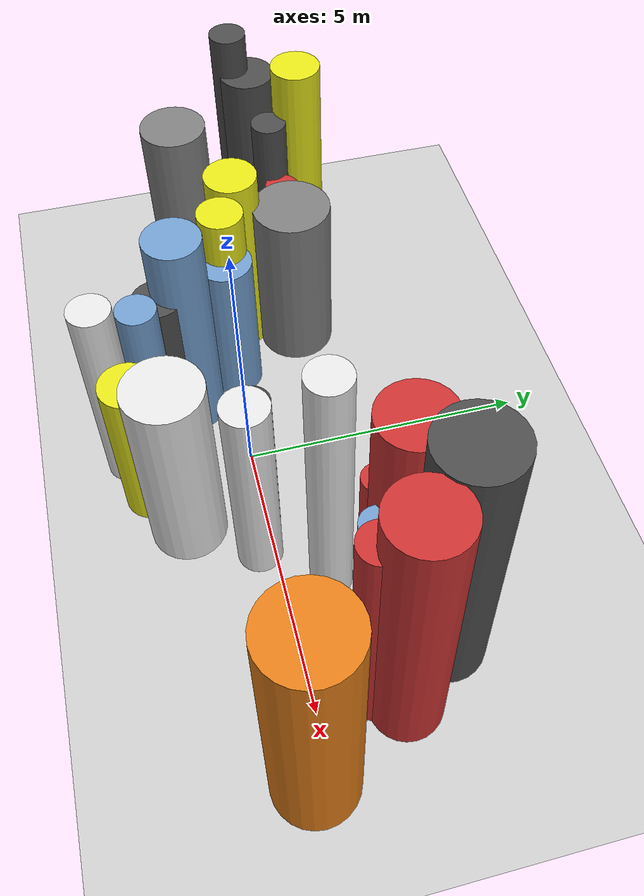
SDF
<?xml version='1.0'?>
<sdf version='1.6'>
  <world name='routeA_rl_v1__dense_recovery__rl_train__s_turn_multi_obstacle__000093'>
    <!-- Sun light -->
    <light name='sun' type='directional'>
      <cast_shadows>1</cast_shadows>
      <pose>0 0 10 0 0 0</pose>
      <diffuse>0.8 0.8 0.8 1</diffuse>
      <specular>0.2 0.2 0.2 1</specular>
      <attenuation>
        <range>1000</range>
        <constant>0.9</constant>
        <linear>0.01</linear>
        <quadratic>0.001</quadratic>
      </attenuation>
      <direction>-0.5 0.1 -0.9</direction>
    </light>

    <!-- Ground plane -->
    <model name='ground_plane'>
      <static>1</static>
      <link name='link'>
        <collision name='collision'>
          <geometry>
            <plane>
              <normal>0 0 1</normal>
              <size>100 100</size>
            </plane>
          </geometry>
          <surface>
            <contact>
              <collide_bitmask>65535</collide_bitmask>
              <ode/>
            </contact>
            <friction>
              <ode>
                <mu>100</mu>
                <mu2>50</mu2>
              </ode>
              <torsional><ode/></torsional>
            </friction>
            <bounce/>
          </surface>
          <max_contacts>10</max_contacts>
        </collision>
        <visual name='visual'>
          <cast_shadows>0</cast_shadows>
          <geometry>
            <plane>
              <normal>0 0 1</normal>
              <size>100 100</size>
            </plane>
          </geometry>
          <material>
            <script>
              <uri>file://media/materials/scripts/gazebo.material</uri>
              <n>Gazebo/Grey</n>
            </script>
          </material>
        </visual>
      </link>
    </model>

    <!-- Environment -->
    <magnetic_field>6e-06 2.3e-05 -4.2e-05</magnetic_field>
    <atmosphere type='adiabatic'/>
    <physics name='default_physics' default='0' type='ode'>
      <gravity>0 0 -9.8</gravity>
      <max_step_size>0.004</max_step_size>
      <real_time_factor>1</real_time_factor>
      <real_time_update_rate>250</real_time_update_rate>
    </physics>
    <scene>
      <ambient>0.4 0.4 0.4 1</ambient>
      <background>0.7 0.7 0.7 1</background>
      <shadows>1</shadows>
    </scene>
    <wind/>
    <spherical_coordinates>
      <surface_model>EARTH_WGS84</surface_model>
      <latitude_deg>0</latitude_deg>
      <longitude_deg>0</longitude_deg>
      <elevation>0</elevation>
      <heading_deg>0</heading_deg>
    </spherical_coordinates>

    <!-- ============ OBSTACLES (28) ============ -->
    <model name='s_turn_obs_0'>
      <static>1</static>
      <link name='link'>
        <visual name='visual'>
          <geometry>
            <cylinder>
              <radius>0.6418</radius>
              <length>3.0155</length>
            </cylinder>
          </geometry>
          <material>
            <script>
              <n>Gazebo/Grey</n>
              <uri>file://media/materials/scripts/gazebo.material</uri>
            </script>
            <ambient>0.5 0.5 0.5 1</ambient>
          </material>
        </visual>
        <collision name='collision'>
          <geometry>
            <cylinder>
              <radius>0.6418</radius>
              <length>3.0155</length>
            </cylinder>
          </geometry>
          <max_contacts>10</max_contacts>
          <surface>
            <contact><ode/></contact>
            <bounce/>
            <friction>
              <ode><mu>1</mu><mu2>1</mu2></ode>
              <torsional><ode/></torsional>
            </friction>
          </surface>
        </collision>
      </link>
      <pose>-6.0000 -0.1599 1.5077 0 0 0.0000</pose>
    </model>

    <model name='s_turn_obs_1'>
      <static>1</static>
      <link name='link'>
        <visual name='visual'>
          <geometry>
            <cylinder>
              <radius>0.3200</radius>
              <length>5.3557</length>
            </cylinder>
          </geometry>
          <material>
            <script>
              <n>Gazebo/DarkGrey</n>
              <uri>file://media/materials/scripts/gazebo.material</uri>
            </script>
            <ambient>0.3 0.3 0.3 1</ambient>
          </material>
        </visual>
        <collision name='collision'>
          <geometry>
            <cylinder>
              <radius>0.3200</radius>
              <length>5.3557</length>
            </cylinder>
          </geometry>
          <max_contacts>10</max_contacts>
          <surface>
            <contact><ode/></contact>
            <bounce/>
            <friction>
              <ode><mu>1</mu><mu2>1</mu2></ode>
              <torsional><ode/></torsional>
            </friction>
          </surface>
        </collision>
      </link>
      <pose>-5.2000 0.9741 2.6778 0 0 0.0000</pose>
    </model>

    <model name='s_turn_obs_2'>
      <static>1</static>
      <link name='link'>
        <visual name='visual'>
          <geometry>
            <cylinder>
              <radius>0.4378</radius>
              <length>5.0576</length>
            </cylinder>
          </geometry>
          <material>
            <script>
              <n>Gazebo/Yellow</n>
              <uri>file://media/materials/scripts/gazebo.material</uri>
            </script>
            <ambient>0.9 0.9 0.1 1</ambient>
          </material>
        </visual>
        <collision name='collision'>
          <geometry>
            <cylinder>
              <radius>0.4378</radius>
              <length>5.0576</length>
            </cylinder>
          </geometry>
          <max_contacts>10</max_contacts>
          <surface>
            <contact><ode/></contact>
            <bounce/>
            <friction>
              <ode><mu>1</mu><mu2>1</mu2></ode>
              <torsional><ode/></torsional>
            </friction>
          </surface>
        </collision>
      </link>
      <pose>-4.4000 2.0059 2.5288 0 0 0.0000</pose>
    </model>

    <model name='s_turn_obs_3'>
      <static>1</static>
      <link name='link'>
        <visual name='visual'>
          <geometry>
            <cylinder>
              <radius>0.3048</radius>
              <length>3.1299</length>
            </cylinder>
          </geometry>
          <material>
            <script>
              <n>Gazebo/Red</n>
              <uri>file://media/materials/scripts/gazebo.material</uri>
            </script>
            <ambient>0.8 0.2 0.2 1</ambient>
          </material>
        </visual>
        <collision name='collision'>
          <geometry>
            <cylinder>
              <radius>0.3048</radius>
              <length>3.1299</length>
            </cylinder>
          </geometry>
          <max_contacts>10</max_contacts>
          <surface>
            <contact><ode/></contact>
            <bounce/>
            <friction>
              <ode><mu>1</mu><mu2>1</mu2></ode>
              <torsional><ode/></torsional>
            </friction>
          </surface>
        </collision>
      </link>
      <pose>-3.6000 1.5160 1.5650 0 0 0.0000</pose>
    </model>

    <model name='s_turn_obs_4'>
      <static>1</static>
      <link name='link'>
        <visual name='visual'>
          <geometry>
            <cylinder>
              <radius>0.6995</radius>
              <length>3.3065</length>
            </cylinder>
          </geometry>
          <material>
            <script>
              <n>Gazebo/Grey</n>
              <uri>file://media/materials/scripts/gazebo.material</uri>
            </script>
            <ambient>0.5 0.5 0.5 1</ambient>
          </material>
        </visual>
        <collision name='collision'>
          <geometry>
            <cylinder>
              <radius>0.6995</radius>
              <length>3.3065</length>
            </cylinder>
          </geometry>
          <max_contacts>10</max_contacts>
          <surface>
            <contact><ode/></contact>
            <bounce/>
            <friction>
              <ode><mu>1</mu><mu2>1</mu2></ode>
              <torsional><ode/></torsional>
            </friction>
          </surface>
        </collision>
      </link>
      <pose>-2.8000 1.5094 1.6533 0 0 0.0000</pose>
    </model>

    <model name='s_turn_obs_5'>
      <static>1</static>
      <link name='link'>
        <visual name='visual'>
          <geometry>
            <cylinder>
              <radius>0.4910</radius>
              <length>3.0280</length>
            </cylinder>
          </geometry>
          <material>
            <script>
              <n>Gazebo/Blue</n>
              <uri>file://media/materials/scripts/gazebo.material</uri>
            </script>
            <ambient>0.447 0.624 0.812 1</ambient>
          </material>
        </visual>
        <collision name='collision'>
          <geometry>
            <cylinder>
              <radius>0.4910</radius>
              <length>3.0280</length>
            </cylinder>
          </geometry>
          <max_contacts>10</max_contacts>
          <surface>
            <contact><ode/></contact>
            <bounce/>
            <friction>
              <ode><mu>1</mu><mu2>1</mu2></ode>
              <torsional><ode/></torsional>
            </friction>
          </surface>
        </collision>
      </link>
      <pose>-2.0000 0.1230 1.5140 0 0 0.0000</pose>
    </model>

    <model name='s_turn_obs_6'>
      <static>1</static>
      <link name='link'>
        <visual name='visual'>
          <geometry>
            <cylinder>
              <radius>0.4300</radius>
              <length>3.2369</length>
            </cylinder>
          </geometry>
          <material>
            <script>
              <n>Gazebo/DarkGrey</n>
              <uri>file://media/materials/scripts/gazebo.material</uri>
            </script>
            <ambient>0.3 0.3 0.3 1</ambient>
          </material>
        </visual>
        <collision name='collision'>
          <geometry>
            <cylinder>
              <radius>0.4300</radius>
              <length>3.2369</length>
            </cylinder>
          </geometry>
          <max_contacts>10</max_contacts>
          <surface>
            <contact><ode/></contact>
            <bounce/>
            <friction>
              <ode><mu>1</mu><mu2>1</mu2></ode>
              <torsional><ode/></torsional>
            </friction>
          </surface>
        </collision>
      </link>
      <pose>-1.2000 -1.1308 1.6184 0 0 0.0000</pose>
    </model>

    <model name='s_turn_obs_7'>
      <static>1</static>
      <link name='link'>
        <visual name='visual'>
          <geometry>
            <cylinder>
              <radius>0.3569</radius>
              <length>4.0674</length>
            </cylinder>
          </geometry>
          <material>
            <script>
              <n>Gazebo/White</n>
              <uri>file://media/materials/scripts/gazebo.material</uri>
            </script>
            <ambient>0.9 0.9 0.9 1</ambient>
          </material>
        </visual>
        <collision name='collision'>
          <geometry>
            <cylinder>
              <radius>0.3569</radius>
              <length>4.0674</length>
            </cylinder>
          </geometry>
          <max_contacts>10</max_contacts>
          <surface>
            <contact><ode/></contact>
            <bounce/>
            <friction>
              <ode><mu>1</mu><mu2>1</mu2></ode>
              <torsional><ode/></torsional>
            </friction>
          </surface>
        </collision>
      </link>
      <pose>-0.4000 -2.1851 2.0337 0 0 0.0000</pose>
    </model>

    <model name='s_turn_obs_8'>
      <static>1</static>
      <link name='link'>
        <visual name='visual'>
          <geometry>
            <cylinder>
              <radius>0.4644</radius>
              <length>3.1144</length>
            </cylinder>
          </geometry>
          <material>
            <script>
              <n>Gazebo/Yellow</n>
              <uri>file://media/materials/scripts/gazebo.material</uri>
            </script>
            <ambient>0.9 0.9 0.1 1</ambient>
          </material>
        </visual>
        <collision name='collision'>
          <geometry>
            <cylinder>
              <radius>0.4644</radius>
              <length>3.1144</length>
            </cylinder>
          </geometry>
          <max_contacts>10</max_contacts>
          <surface>
            <contact><ode/></contact>
            <bounce/>
            <friction>
              <ode><mu>1</mu><mu2>1</mu2></ode>
              <torsional><ode/></torsional>
            </friction>
          </surface>
        </collision>
      </link>
      <pose>0.4000 -1.8598 1.5572 0 0 0.0000</pose>
    </model>

    <model name='s_turn_obs_9'>
      <static>1</static>
      <link name='link'>
        <visual name='visual'>
          <geometry>
            <cylinder>
              <radius>0.6528</radius>
              <length>3.8027</length>
            </cylinder>
          </geometry>
          <material>
            <script>
              <n>Gazebo/White</n>
              <uri>file://media/materials/scripts/gazebo.material</uri>
            </script>
            <ambient>0.9 0.9 0.9 1</ambient>
          </material>
        </visual>
        <collision name='collision'>
          <geometry>
            <cylinder>
              <radius>0.6528</radius>
              <length>3.8027</length>
            </cylinder>
          </geometry>
          <max_contacts>10</max_contacts>
          <surface>
            <contact><ode/></contact>
            <bounce/>
            <friction>
              <ode><mu>1</mu><mu2>1</mu2></ode>
              <torsional><ode/></torsional>
            </friction>
          </surface>
        </collision>
      </link>
      <pose>1.2000 -1.3313 1.9013 0 0 0.0000</pose>
    </model>

    <model name='s_turn_obs_10'>
      <static>1</static>
      <link name='link'>
        <visual name='visual'>
          <geometry>
            <cylinder>
              <radius>0.3864</radius>
              <length>4.0405</length>
            </cylinder>
          </geometry>
          <material>
            <script>
              <n>Gazebo/White</n>
              <uri>file://media/materials/scripts/gazebo.material</uri>
            </script>
            <ambient>0.9 0.9 0.9 1</ambient>
          </material>
        </visual>
        <collision name='collision'>
          <geometry>
            <cylinder>
              <radius>0.3864</radius>
              <length>4.0405</length>
            </cylinder>
          </geometry>
          <max_contacts>10</max_contacts>
          <surface>
            <contact><ode/></contact>
            <bounce/>
            <friction>
              <ode><mu>1</mu><mu2>1</mu2></ode>
              <torsional><ode/></torsional>
            </friction>
          </surface>
        </collision>
      </link>
      <pose>2.0000 -0.2448 2.0202 0 0 0.0000</pose>
    </model>

    <model name='s_turn_obs_11'>
      <static>1</static>
      <link name='link'>
        <visual name='visual'>
          <geometry>
            <cylinder>
              <radius>0.3548</radius>
              <length>5.3485</length>
            </cylinder>
          </geometry>
          <material>
            <script>
              <n>Gazebo/White</n>
              <uri>file://media/materials/scripts/gazebo.material</uri>
            </script>
            <ambient>0.9 0.9 0.9 1</ambient>
          </material>
        </visual>
        <collision name='collision'>
          <geometry>
            <cylinder>
              <radius>0.3548</radius>
              <length>5.3485</length>
            </cylinder>
          </geometry>
          <max_contacts>10</max_contacts>
          <surface>
            <contact><ode/></contact>
            <bounce/>
            <friction>
              <ode><mu>1</mu><mu2>1</mu2></ode>
              <torsional><ode/></torsional>
            </friction>
          </surface>
        </collision>
      </link>
      <pose>2.8000 0.7950 2.6743 0 0 0.0000</pose>
    </model>

    <model name='s_turn_obs_12'>
      <static>1</static>
      <link name='link'>
        <visual name='visual'>
          <geometry>
            <cylinder>
              <radius>0.5907</radius>
              <length>5.2237</length>
            </cylinder>
          </geometry>
          <material>
            <script>
              <n>Gazebo/Red</n>
              <uri>file://media/materials/scripts/gazebo.material</uri>
            </script>
            <ambient>0.8 0.2 0.2 1</ambient>
          </material>
        </visual>
        <collision name='collision'>
          <geometry>
            <cylinder>
              <radius>0.5907</radius>
              <length>5.2237</length>
            </cylinder>
          </geometry>
          <max_contacts>10</max_contacts>
          <surface>
            <contact><ode/></contact>
            <bounce/>
            <friction>
              <ode><mu>1</mu><mu2>1</mu2></ode>
              <torsional><ode/></torsional>
            </friction>
          </surface>
        </collision>
      </link>
      <pose>3.6000 1.7473 2.6118 0 0 0.0000</pose>
    </model>

    <model name='s_turn_obs_13'>
      <static>1</static>
      <link name='link'>
        <visual name='visual'>
          <geometry>
            <cylinder>
              <radius>0.6541</radius>
              <length>5.5284</length>
            </cylinder>
          </geometry>
          <material>
            <script>
              <n>Gazebo/DarkGrey</n>
              <uri>file://media/materials/scripts/gazebo.material</uri>
            </script>
            <ambient>0.3 0.3 0.3 1</ambient>
          </material>
        </visual>
        <collision name='collision'>
          <geometry>
            <cylinder>
              <radius>0.6541</radius>
              <length>5.5284</length>
            </cylinder>
          </geometry>
          <max_contacts>10</max_contacts>
          <surface>
            <contact><ode/></contact>
            <bounce/>
            <friction>
              <ode><mu>1</mu><mu2>1</mu2></ode>
              <torsional><ode/></torsional>
            </friction>
          </surface>
        </collision>
      </link>
      <pose>4.4000 2.2730 2.7642 0 0 0.0000</pose>
    </model>

    <model name='s_turn_obs_14'>
      <static>1</static>
      <link name='link'>
        <visual name='visual'>
          <geometry>
            <cylinder>
              <radius>0.5936</radius>
              <length>5.4843</length>
            </cylinder>
          </geometry>
          <material>
            <script>
              <n>Gazebo/Red</n>
              <uri>file://media/materials/scripts/gazebo.material</uri>
            </script>
            <ambient>0.8 0.2 0.2 1</ambient>
          </material>
        </visual>
        <collision name='collision'>
          <geometry>
            <cylinder>
              <radius>0.5936</radius>
              <length>5.4843</length>
            </cylinder>
          </geometry>
          <max_contacts>10</max_contacts>
          <surface>
            <contact><ode/></contact>
            <bounce/>
            <friction>
              <ode><mu>1</mu><mu2>1</mu2></ode>
              <torsional><ode/></torsional>
            </friction>
          </surface>
        </collision>
      </link>
      <pose>5.2000 1.3754 2.7421 0 0 0.0000</pose>
    </model>

    <model name='s_turn_obs_15'>
      <static>1</static>
      <link name='link'>
        <visual name='visual'>
          <geometry>
            <cylinder>
              <radius>0.6949</radius>
              <length>4.9998</length>
            </cylinder>
          </geometry>
          <material>
            <script>
              <n>Gazebo/Orange</n>
              <uri>file://media/materials/scripts/gazebo.material</uri>
            </script>
            <ambient>0.9 0.5 0.1 1</ambient>
          </material>
        </visual>
        <collision name='collision'>
          <geometry>
            <cylinder>
              <radius>0.6949</radius>
              <length>4.9998</length>
            </cylinder>
          </geometry>
          <max_contacts>10</max_contacts>
          <surface>
            <contact><ode/></contact>
            <bounce/>
            <friction>
              <ode><mu>1</mu><mu2>1</mu2></ode>
              <torsional><ode/></torsional>
            </friction>
          </surface>
        </collision>
      </link>
      <pose>6.0000 -0.2535 2.4999 0 0 0.0000</pose>
    </model>

    <model name='s_turn_obs2_0'>
      <static>1</static>
      <link name='link'>
        <visual name='visual'>
          <geometry>
            <cylinder>
              <radius>0.4880</radius>
              <length>4.6514</length>
            </cylinder>
          </geometry>
          <material>
            <script>
              <n>Gazebo/DarkGrey</n>
              <uri>file://media/materials/scripts/gazebo.material</uri>
            </script>
            <ambient>0.3 0.3 0.3 1</ambient>
          </material>
        </visual>
        <collision name='collision'>
          <geometry>
            <cylinder>
              <radius>0.4880</radius>
              <length>4.6514</length>
            </cylinder>
          </geometry>
          <max_contacts>10</max_contacts>
          <surface>
            <contact><ode/></contact>
            <bounce/>
            <friction>
              <ode><mu>1</mu><mu2>1</mu2></ode>
              <torsional><ode/></torsional>
            </friction>
          </surface>
        </collision>
      </link>
      <pose>-5.0000 1.2320 2.3257 0 0 0.0000</pose>
    </model>

    <model name='s_turn_obs2_1'>
      <static>1</static>
      <link name='link'>
        <visual name='visual'>
          <geometry>
            <cylinder>
              <radius>0.3127</radius>
              <length>4.1829</length>
            </cylinder>
          </geometry>
          <material>
            <script>
              <n>Gazebo/DarkGrey</n>
              <uri>file://media/materials/scripts/gazebo.material</uri>
            </script>
            <ambient>0.3 0.3 0.3 1</ambient>
          </material>
        </visual>
        <collision name='collision'>
          <geometry>
            <cylinder>
              <radius>0.3127</radius>
              <length>4.1829</length>
            </cylinder>
          </geometry>
          <max_contacts>10</max_contacts>
          <surface>
            <contact><ode/></contact>
            <bounce/>
            <friction>
              <ode><mu>1</mu><mu2>1</mu2></ode>
              <torsional><ode/></torsional>
            </friction>
          </surface>
        </collision>
      </link>
      <pose>-4.0909 1.4178 2.0914 0 0 0.0000</pose>
    </model>

    <model name='s_turn_obs2_2'>
      <static>1</static>
      <link name='link'>
        <visual name='visual'>
          <geometry>
            <cylinder>
              <radius>0.4758</radius>
              <length>3.8984</length>
            </cylinder>
          </geometry>
          <material>
            <script>
              <n>Gazebo/Yellow</n>
              <uri>file://media/materials/scripts/gazebo.material</uri>
            </script>
            <ambient>0.9 0.9 0.1 1</ambient>
          </material>
        </visual>
        <collision name='collision'>
          <geometry>
            <cylinder>
              <radius>0.4758</radius>
              <length>3.8984</length>
            </cylinder>
          </geometry>
          <max_contacts>10</max_contacts>
          <surface>
            <contact><ode/></contact>
            <bounce/>
            <friction>
              <ode><mu>1</mu><mu2>1</mu2></ode>
              <torsional><ode/></torsional>
            </friction>
          </surface>
        </collision>
      </link>
      <pose>-3.1818 0.5238 1.9492 0 0 0.0000</pose>
    </model>

    <model name='s_turn_obs2_3'>
      <static>1</static>
      <link name='link'>
        <visual name='visual'>
          <geometry>
            <cylinder>
              <radius>0.4052</radius>
              <length>3.8943</length>
            </cylinder>
          </geometry>
          <material>
            <script>
              <n>Gazebo/Yellow</n>
              <uri>file://media/materials/scripts/gazebo.material</uri>
            </script>
            <ambient>0.9 0.9 0.1 1</ambient>
          </material>
        </visual>
        <collision name='collision'>
          <geometry>
            <cylinder>
              <radius>0.4052</radius>
              <length>3.8943</length>
            </cylinder>
          </geometry>
          <max_contacts>10</max_contacts>
          <surface>
            <contact><ode/></contact>
            <bounce/>
            <friction>
              <ode><mu>1</mu><mu2>1</mu2></ode>
              <torsional><ode/></torsional>
            </friction>
          </surface>
        </collision>
      </link>
      <pose>-2.2727 0.1707 1.9472 0 0 0.0000</pose>
    </model>

    <model name='s_turn_obs2_4'>
      <static>1</static>
      <link name='link'>
        <visual name='visual'>
          <geometry>
            <cylinder>
              <radius>0.4971</radius>
              <length>4.3359</length>
            </cylinder>
          </geometry>
          <material>
            <script>
              <n>Gazebo/Blue</n>
              <uri>file://media/materials/scripts/gazebo.material</uri>
            </script>
            <ambient>0.447 0.624 0.812 1</ambient>
          </material>
        </visual>
        <collision name='collision'>
          <geometry>
            <cylinder>
              <radius>0.4971</radius>
              <length>4.3359</length>
            </cylinder>
          </geometry>
          <max_contacts>10</max_contacts>
          <surface>
            <contact><ode/></contact>
            <bounce/>
            <friction>
              <ode><mu>1</mu><mu2>1</mu2></ode>
              <torsional><ode/></torsional>
            </friction>
          </surface>
        </collision>
      </link>
      <pose>-1.3636 -0.7339 2.1679 0 0 0.0000</pose>
    </model>

    <model name='s_turn_obs2_5'>
      <static>1</static>
      <link name='link'>
        <visual name='visual'>
          <geometry>
            <cylinder>
              <radius>0.3356</radius>
              <length>3.8392</length>
            </cylinder>
          </geometry>
          <material>
            <script>
              <n>Gazebo/Blue</n>
              <uri>file://media/materials/scripts/gazebo.material</uri>
            </script>
            <ambient>0.447 0.624 0.812 1</ambient>
          </material>
        </visual>
        <collision name='collision'>
          <geometry>
            <cylinder>
              <radius>0.3356</radius>
              <length>3.8392</length>
            </cylinder>
          </geometry>
          <max_contacts>10</max_contacts>
          <surface>
            <contact><ode/></contact>
            <bounce/>
            <friction>
              <ode><mu>1</mu><mu2>1</mu2></ode>
              <torsional><ode/></torsional>
            </friction>
          </surface>
        </collision>
      </link>
      <pose>-0.4545 -1.4923 1.9196 0 0 0.0000</pose>
    </model>

    <model name='s_turn_obs2_6'>
      <static>1</static>
      <link name='link'>
        <visual name='visual'>
          <geometry>
            <cylinder>
              <radius>0.4725</radius>
              <length>3.0612</length>
            </cylinder>
          </geometry>
          <material>
            <script>
              <n>Gazebo/Red</n>
              <uri>file://media/materials/scripts/gazebo.material</uri>
            </script>
            <ambient>0.8 0.2 0.2 1</ambient>
          </material>
        </visual>
        <collision name='collision'>
          <geometry>
            <cylinder>
              <radius>0.4725</radius>
              <length>3.0612</length>
            </cylinder>
          </geometry>
          <max_contacts>10</max_contacts>
          <surface>
            <contact><ode/></contact>
            <bounce/>
            <friction>
              <ode><mu>1</mu><mu2>1</mu2></ode>
              <torsional><ode/></torsional>
            </friction>
          </surface>
        </collision>
      </link>
      <pose>0.4545 -1.3188 1.5306 0 0 0.0000</pose>
    </model>

    <model name='s_turn_obs2_7'>
      <static>1</static>
      <link name='link'>
        <visual name='visual'>
          <geometry>
            <cylinder>
              <radius>0.3128</radius>
              <length>3.3166</length>
            </cylinder>
          </geometry>
          <material>
            <script>
              <n>Gazebo/DarkGrey</n>
              <uri>file://media/materials/scripts/gazebo.material</uri>
            </script>
            <ambient>0.3 0.3 0.3 1</ambient>
          </material>
        </visual>
        <collision name='collision'>
          <geometry>
            <cylinder>
              <radius>0.3128</radius>
              <length>3.3166</length>
            </cylinder>
          </geometry>
          <max_contacts>10</max_contacts>
          <surface>
            <contact><ode/></contact>
            <bounce/>
            <friction>
              <ode><mu>1</mu><mu2>1</mu2></ode>
              <torsional><ode/></torsional>
            </friction>
          </surface>
        </collision>
      </link>
      <pose>1.3636 -0.0718 1.6583 0 0 0.0000</pose>
    </model>

    <model name='s_turn_obs2_8'>
      <static>1</static>
      <link name='link'>
        <visual name='visual'>
          <geometry>
            <cylinder>
              <radius>0.2958</radius>
              <length>3.4082</length>
            </cylinder>
          </geometry>
          <material>
            <script>
              <n>Gazebo/Blue</n>
              <uri>file://media/materials/scripts/gazebo.material</uri>
            </script>
            <ambient>0.447 0.624 0.812 1</ambient>
          </material>
        </visual>
        <collision name='collision'>
          <geometry>
            <cylinder>
              <radius>0.2958</radius>
              <length>3.4082</length>
            </cylinder>
          </geometry>
          <max_contacts>10</max_contacts>
          <surface>
            <contact><ode/></contact>
            <bounce/>
            <friction>
              <ode><mu>1</mu><mu2>1</mu2></ode>
              <torsional><ode/></torsional>
            </friction>
          </surface>
        </collision>
      </link>
      <pose>2.2727 0.8567 1.7041 0 0 0.0000</pose>
    </model>

    <model name='s_turn_obs2_9'>
      <static>1</static>
      <link name='link'>
        <visual name='visual'>
          <geometry>
            <cylinder>
              <radius>0.2556</radius>
              <length>3.3510</length>
            </cylinder>
          </geometry>
          <material>
            <script>
              <n>Gazebo/Red</n>
              <uri>file://media/materials/scripts/gazebo.material</uri>
            </script>
            <ambient>0.8 0.2 0.2 1</ambient>
          </material>
        </visual>
        <collision name='collision'>
          <geometry>
            <cylinder>
              <radius>0.2556</radius>
              <length>3.3510</length>
            </cylinder>
          </geometry>
          <max_contacts>10</max_contacts>
          <surface>
            <contact><ode/></contact>
            <bounce/>
            <friction>
              <ode><mu>1</mu><mu2>1</mu2></ode>
              <torsional><ode/></torsional>
            </friction>
          </surface>
        </collision>
      </link>
      <pose>3.1818 1.4007 1.6755 0 0 0.0000</pose>
    </model>

    <model name='s_turn_obs2_10'>
      <static>1</static>
      <link name='link'>
        <visual name='visual'>
          <geometry>
            <cylinder>
              <radius>0.3057</radius>
              <length>3.6327</length>
            </cylinder>
          </geometry>
          <material>
            <script>
              <n>Gazebo/Blue</n>
              <uri>file://media/materials/scripts/gazebo.material</uri>
            </script>
            <ambient>0.447 0.624 0.812 1</ambient>
          </material>
        </visual>
        <collision name='collision'>
          <geometry>
            <cylinder>
              <radius>0.3057</radius>
              <length>3.6327</length>
            </cylinder>
          </geometry>
          <max_contacts>10</max_contacts>
          <surface>
            <contact><ode/></contact>
            <bounce/>
            <friction>
              <ode><mu>1</mu><mu2>1</mu2></ode>
              <torsional><ode/></torsional>
            </friction>
          </surface>
        </collision>
      </link>
      <pose>4.0909 1.1607 1.8164 0 0 0.0000</pose>
    </model>

    <model name='s_turn_obs2_11'>
      <static>1</static>
      <link name='link'>
        <visual name='visual'>
          <geometry>
            <cylinder>
              <radius>0.3318</radius>
              <length>4.7638</length>
            </cylinder>
          </geometry>
          <material>
            <script>
              <n>Gazebo/Red</n>
              <uri>file://media/materials/scripts/gazebo.material</uri>
            </script>
            <ambient>0.8 0.2 0.2 1</ambient>
          </material>
        </visual>
        <collision name='collision'>
          <geometry>
            <cylinder>
              <radius>0.3318</radius>
              <length>4.7638</length>
            </cylinder>
          </geometry>
          <max_contacts>10</max_contacts>
          <surface>
            <contact><ode/></contact>
            <bounce/>
            <friction>
              <ode><mu>1</mu><mu2>1</mu2></ode>
              <torsional><ode/></torsional>
            </friction>
          </surface>
        </collision>
      </link>
      <pose>5.0000 0.8799 2.3819 0 0 0.0000</pose>
    </model>

    <!-- GUI camera -->
    <gui fullscreen='0'>
      <camera name='user_camera'>
        <pose>-15 0 18 0 0.85 0.15</pose>
        <view_controller>orbit</view_controller>
        <projection_type>perspective</projection_type>
      </camera>
    </gui>
  </world>
</sdf>
